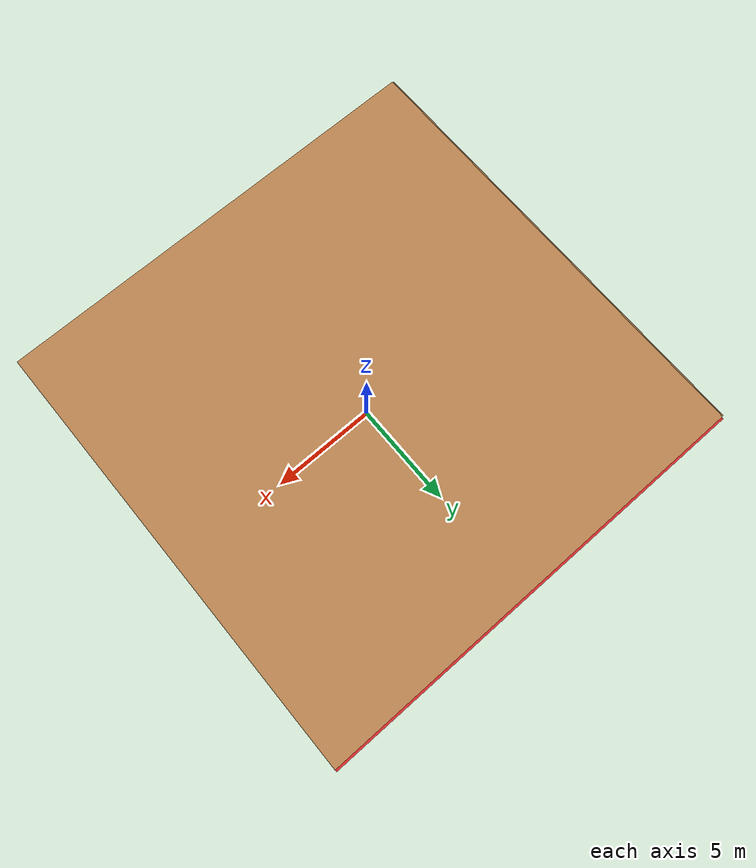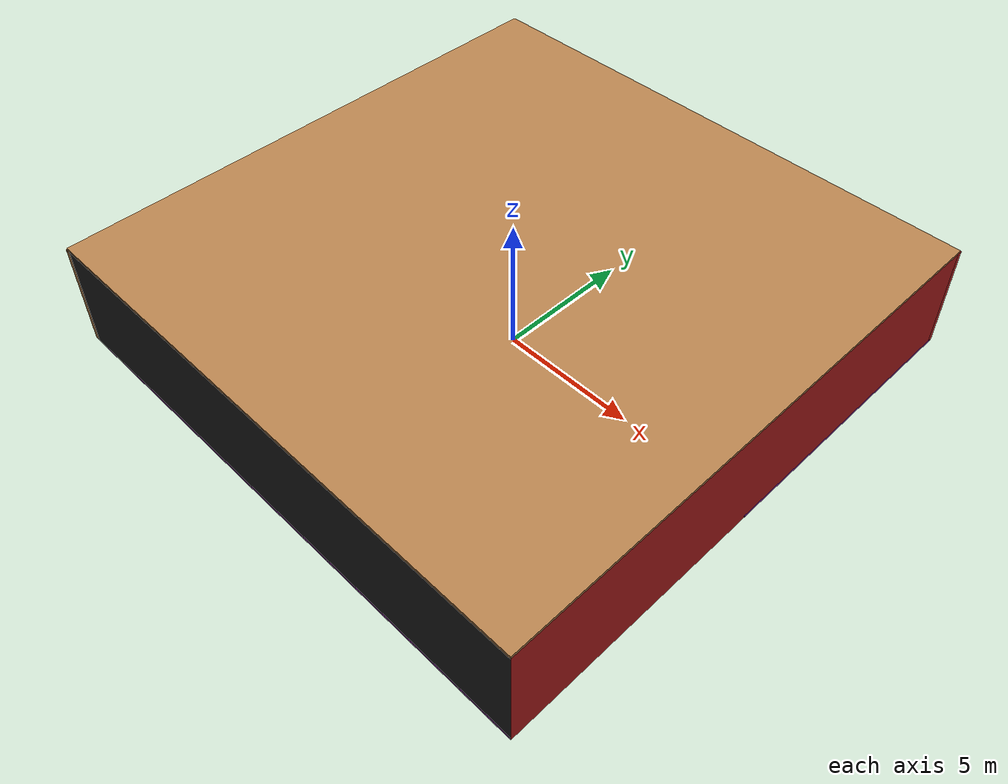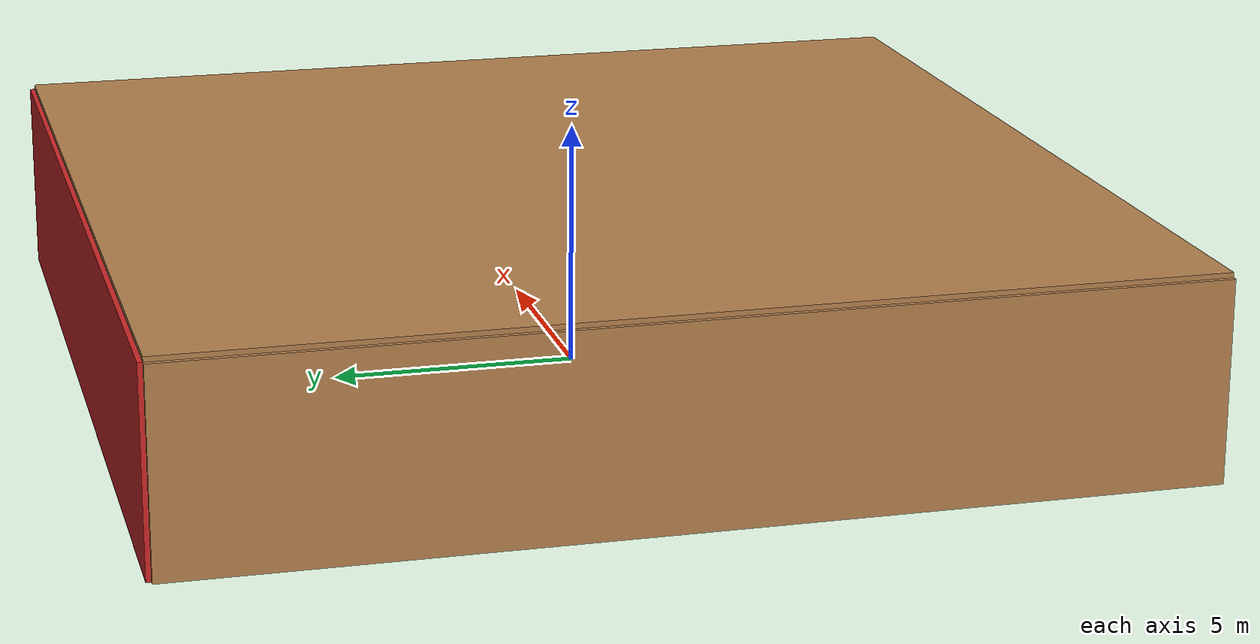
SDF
<sdf version="1.4">
 <world name="default">
  <physics type="ode">
   <max_step_size>0.001</max_step_size>
   <real_time_factor>1</real_time_factor>
   <real_time_update_rate>1000</real_time_update_rate>
   <gravity>0 0 -9.8</gravity>
  </physics>
  <scene><ambient>0.4 0.4 0.4 1</ambient><background>0.7 0.7 0.7 1</background><shadows>1</shadows></scene>
  <model name="Surrounding">
   <static>1</static>
   <link name="Ceiling">
    <collision name="Ceiling_Collision"><geometry><box><size>20 20 0.1</size></box></geometry></collision>
    <visual name="Ceiling_Visual">
     <geometry><box><size>20 20 0.1</size></box></geometry>
     <material>
      <script><uri>file://media/materials/scripts/gazebo.material</uri><name>Gazebo/Wood</name></script>
     </material>
    </visual>
    <pose>0 0 4.05 0 0 0</pose>
   </link>
   <link name="Wall_South">
    <collision name="Wall_South_Collision">
     <geometry><box><size>20 0 4</size></box></geometry>
     <pose>0 0 2 0 -0 0</pose>
    </collision>
    <visual name="Wall_South_Visual">
     <pose>0 0 2 0 -0 0</pose>
     <geometry><box><size>20 0 4</size></box></geometry>
     <material>
      <script><uri>file://media/materials/scripts/gazebo.material</uri><name>Gazebo/Black</name></script>
     </material>
    </visual>
    <velocity_decay><linear>0</linear><angular>0</angular></velocity_decay>
    <pose>0 -10 0 0 -0 0</pose>
   </link>
   <link name="Wall_East">
    <collision name="Wall_21_Collision">
     <geometry><box><size>20 0 4</size></box></geometry>
     <pose>0 0 2 0 -0 0</pose>
    </collision>
    <visual name="Wall_21_Visual">
     <pose>0 0 2 0 -0 0</pose>
     <geometry><box><size>20 0 4</size></box></geometry>
     <material>
      <script><uri>file://media/materials/scripts/gazebo.material</uri><name>Gazebo/Red</name></script>
     </material>
    </visual>
    <velocity_decay><linear>0</linear><angular>0</angular></velocity_decay>
    <pose>10 0 0 0 -0 1.5708</pose>
   </link>
   <link name="Wall_North">
    <collision name="Wall_22_Collision">
     <geometry><box><size>20 0.2 4</size></box></geometry>
     <pose>0 0 2 0 -0 0</pose>
    </collision>
    <visual name="Wall_22_Visual">
     <pose>0 0 2 0 -0 0</pose>
     <geometry><box><size>20 0.2 4</size></box></geometry>
     <material>
      <script><uri>file://media/materials/scripts/gazebo.material</uri><name>Gazebo/RedGlow</name></script>
     </material>
    </visual>
    <velocity_decay><linear>0</linear><angular>0</angular></velocity_decay>
    <pose>0 10 0 0 -0 0</pose>
   </link>
   <link name="Wall_West">
    <collision name="Wall_23_Collision">
     <geometry><box><size>20 0.2 4</size></box></geometry>
     <pose>0 0 2 0 -0 0</pose>
    </collision>
    <visual name="Wall_23_Visual">
     <pose>0 0 2 0 -0 0</pose>
     <geometry><box><size>20 0.2 4</size></box></geometry>
     <material>
      <script><uri>file://media/materials/scripts/gazebo.material</uri><name>Gazebo/Wood</name></script>
     </material>
    </visual>
    <velocity_decay><linear>0</linear><angular>0</angular></velocity_decay>
    <pose>-10 0 0 0 0 -1.5708</pose>
   </link>
   <link name="Ground_link">
    <collision name="collision">
     <pose>0 0 .05 0 -0 0</pose>
     <geometry><box><size>20 20 0.1</size></box></geometry>
    </collision>
    <visual name="visual">
     <pose>0 0 .05 0 -0 0</pose>
     <geometry><box><size>20 20 0.1</size></box></geometry>
     <material>
      <script><uri>file://media/materials/scripts/gazebo.material</uri><name>Gazebo/PurpleGlow</name></script>
     </material>
    </visual>
   </link>
   <static>1</static>
  </model>
  <spherical_coordinates>
   <surface_model>EARTH_WGS84</surface_model>
   <latitude_deg>0</latitude_deg>
   <longitude_deg>0</longitude_deg>
   <elevation>0</elevation>
   <heading_deg>0</heading_deg>
  </spherical_coordinates>
  <light name="lightball_0" type="diffuse">
   <diffuse>0.8 0.8 0.8 1</diffuse>
   <specular>0.2 0.2 0.2 1</specular>
   <attenuation>
    <range>100</range>
    <constant>0.7</constant>
    <linear>0.01</linear>
    <quadratic>0.001</quadratic>
   </attenuation>
   <direction>-0.5 0.1 -0.9</direction>
   <pose>-7.81639554819 5.87922895017 3.42025354969 0 0 0</pose>
  </light>
  <light name="lightball_1" type="diffuse">
   <diffuse>0.8 0.8 0.8 1</diffuse>
   <specular>0.2 0.2 0.2 1</specular>
   <attenuation>
    <range>100</range>
    <constant>0.7</constant>
    <linear>0.01</linear>
    <quadratic>0.001</quadratic>
   </attenuation>
   <direction>-0.5 0.1 -0.9</direction>
   <pose>-8.42549904101 -4.92155113399 0.665272383961 0 0 0</pose>
  </light>
  <light name="lightball_2" type="diffuse">
   <diffuse>0.8 0.8 0.8 1</diffuse>
   <specular>0.2 0.2 0.2 1</specular>
   <attenuation>
    <range>100</range>
    <constant>0.7</constant>
    <linear>0.01</linear>
    <quadratic>0.001</quadratic>
   </attenuation>
   <direction>-0.5 0.1 -0.9</direction>
   <pose>-5.08865942682 -8.32956869884 0.876954950127 0 0 0</pose>
  </light>
  <light name="lightball_3" type="diffuse">
   <diffuse>0.8 0.8 0.8 1</diffuse>
   <specular>0.2 0.2 0.2 1</specular>
   <attenuation>
    <range>100</range>
    <constant>0.7</constant>
    <linear>0.01</linear>
    <quadratic>0.001</quadratic>
   </attenuation>
   <direction>-0.5 0.1 -0.9</direction>
   <pose>-0.164617856419 -8.93241844309 2.97678225678 0 0 0</pose>
  </light>
  <light name="lightball_4" type="diffuse">
   <diffuse>0.8 0.8 0.8 1</diffuse>
   <specular>0.2 0.2 0.2 1</specular>
   <attenuation>
    <range>100</range>
    <constant>0.7</constant>
    <linear>0.01</linear>
    <quadratic>0.001</quadratic>
   </attenuation>
   <direction>-0.5 0.1 -0.9</direction>
   <pose>3.66655375632 -5.52661538364 1.55855715205 0 0 0</pose>
  </light>
  <light name="lightball_5" type="diffuse">
   <diffuse>0.8 0.8 0.8 1</diffuse>
   <specular>0.2 0.2 0.2 1</specular>
   <attenuation>
    <range>100</range>
    <constant>0.7</constant>
    <linear>0.01</linear>
    <quadratic>0.001</quadratic>
   </attenuation>
   <direction>-0.5 0.1 -0.9</direction>
   <pose>1.89078185293 -5.8564470063 3.80310082437 0 0 0</pose>
  </light>
  <light name="lightball_6" type="diffuse">
   <diffuse>0.8 0.8 0.8 1</diffuse>
   <specular>0.2 0.2 0.2 1</specular>
   <attenuation>
    <range>100</range>
    <constant>0.7</constant>
    <linear>0.01</linear>
    <quadratic>0.001</quadratic>
   </attenuation>
   <direction>-0.5 0.1 -0.9</direction>
   <pose>-3.24975740562 -9.70398528314 3.08428457179 0 0 0</pose>
  </light>
  <light name="lightball_7" type="diffuse">
   <diffuse>0.8 0.8 0.8 1</diffuse>
   <specular>0.2 0.2 0.2 1</specular>
   <attenuation>
    <range>100</range>
    <constant>0.7</constant>
    <linear>0.01</linear>
    <quadratic>0.001</quadratic>
   </attenuation>
   <direction>-0.5 0.1 -0.9</direction>
   <pose>2.77223954365 8.21496420502 3.67949837245 0 0 0</pose>
  </light>
  <light name="lightball_8" type="diffuse">
   <diffuse>0.8 0.8 0.8 1</diffuse>
   <specular>0.2 0.2 0.2 1</specular>
   <attenuation>
    <range>100</range>
    <constant>0.7</constant>
    <linear>0.01</linear>
    <quadratic>0.001</quadratic>
   </attenuation>
   <direction>-0.5 0.1 -0.9</direction>
   <pose>6.87757388172 7.02621504668 2.74770426862 0 0 0</pose>
  </light>
  <light name="lightball_9" type="diffuse">
   <diffuse>0.8 0.8 0.8 1</diffuse>
   <specular>0.2 0.2 0.2 1</specular>
   <attenuation>
    <range>100</range>
    <constant>0.7</constant>
    <linear>0.01</linear>
    <quadratic>0.001</quadratic>
   </attenuation>
   <direction>-0.5 0.1 -0.9</direction>
   <pose>-3.12107208162 -3.20765927553 1.12085126408 0 0 0</pose>
  </light>
  <light name="lightball_10" type="diffuse">
   <diffuse>0.8 0.8 0.8 1</diffuse>
   <specular>0.2 0.2 0.2 1</specular>
   <attenuation>
    <range>100</range>
    <constant>0.7</constant>
    <linear>0.01</linear>
    <quadratic>0.001</quadratic>
   </attenuation>
   <direction>-0.5 0.1 -0.9</direction>
   <pose>-3.08162504253 -3.49277174922 0.981470763742 0 0 0</pose>
  </light>
  <include>
   <uri>model://textured_shapes</uri>
   <pose>-7.61438405215 -6.84597871035 0 0 0 2.89203158182</pose>
  </include>
  <include><uri>model://cabinet</uri><pose>-8.10681697694 5.14200760662 0 0 0 1.53409163867</pose></include>
  <include>
   <uri>model://construction_cone</uri>
   <pose>-2.29280075317 -5.18970859539 0 0 0 2.05881677574</pose>
  </include>
  <include>
   <uri>model://construction_cone</uri>
   <pose>1.42708010293 -8.17956150964 0 0 0 0.484654813036</pose>
  </include>
  <include><uri>model://table</uri><pose>1.19532999125 -5.08725226963 0 0 0 2.58652293952</pose></include>
  <include><uri>model://table</uri><pose>0.761308231006 -2.11675342832 0 0 0 2.82022971472</pose></include>
 </world>
</sdf>

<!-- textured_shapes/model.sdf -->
<sdf version="1.6">
  <model name="textured_shapes">
    <pose>0 0 0.5 0 0 0</pose>
    <link name="box">
      <pose>0 -1.5 0 0 0 0</pose>
      <collision name="collision">
        <geometry>
          <box>
            <size>1 1 1</size>
          </box>
        </geometry>
      </collision>
      <visual name="visual">
        <geometry>
          <box>
            <size>1 1 1</size>
          </box>
        </geometry>
        <material>
          <script>
            <uri>model://../model_source/models/textured_shapes/materials/scripts</uri>
            <uri>model://../model_source/models/textured_shapes/materials/textures</uri>
            <name>TexturedShape/Squares</name>
          </script>
        </material>
      </visual>
    </link>
    <link name="sphere">
      <collision name="collision">
        <geometry>
          <sphere>
            <radius>0.5</radius>
          </sphere>
        </geometry>
      </collision>
      <visual name="visual">
        <geometry>
          <sphere>
            <radius>0.5</radius>
          </sphere>
        </geometry>
        <material>
          <script>
            <uri>model://../model_source/models/textured_shapes/materials/scripts</uri>
            <uri>model://../model_source/models/textured_shapes/materials/textures</uri>
            <name>TexturedShape/Squares</name>
          </script>
        </material>
      </visual>
    </link>
    <link name="cylinder">
      <pose>0 1.5 0 0 0 0</pose>
      <collision name="collision">
        <geometry>
          <cylinder>
            <radius>0.5</radius>
            <length>1</length>
          </cylinder>
        </geometry>
      </collision>
      <visual name="visual">
        <geometry>
          <cylinder>
            <radius>0.5</radius>
            <length>1</length>
          </cylinder>
        </geometry>
        <material>
          <script>
            <uri>model://../model_source/models/textured_shapes/materials/scripts</uri>
            <uri>model://../model_source/models/textured_shapes/materials/textures</uri>
            <name>TexturedShape/Squares</name>
          </script>
        </material>
      </visual>
    </link>
  </model>
</sdf>

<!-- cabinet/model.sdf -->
<sdf version="1.5">
  <model name="cabinet">
    <static>true</static>
    <link name="cabinet_bottom_plate">
      <inertial>
        <pose>0 0 -1 0 0 0</pose>
        <inertia>
          <ixx>2.050000</ixx>
          <ixy>0</ixy>
          <ixz>0</ixz>
          <iyy>2.050000</iyy>
          <iyz>0</iyz>
          <izz>2.050000</izz>
        </inertia>
        <mass>25.000000</mass>
      </inertial>
      <collision name="cabinet_bottom_plate_geom">
        <pose>0 0 0.010000 0 0 0</pose>
        <geometry>
          <box>
            <size>0.450000 0.450000 0.020000</size>
          </box>
        </geometry>
      </collision>
      <visual name="cabinet_bottom_plate_geom_visual">
        <pose>0 0 0.010000 0 0 0</pose>
        <geometry>
          <box>
            <size>0.450000 0.450000 0.020000</size>
          </box>
        </geometry>
        <material>
          <script>
            <uri>model://media/materials/scripts/gazebo.material</uri>
            <name>Gazebo/Wood</name>
          </script>
        </material>
      </visual>
      <collision name="cabinet_bottom_plate_geom_cabinet_back_plate">
        <pose>0.235000 0 0.510000 0 0 0</pose>
        <geometry>
          <box>
            <size>0.020000 0.450000 1.020000</size>
          </box>
        </geometry>
      </collision>
      <visual name="cabinet_bottom_plate_geom_cabinet_back_plate_visual">
        <pose>0.235000 0 0.510000 0 0 0</pose>
        <geometry>
          <box>
            <size>0.020000 0.450000 1.020000</size>
          </box>
        </geometry>
        <material>
          <script>
            <uri>model://media/materials/scripts/gazebo.material</uri>
            <name>Gazebo/Wood</name>
          </script>
        </material>
      </visual>
      <collision name="cabinet_bottom_plate_geom_cabinet_left_plate">
        <pose>0 0.235000 0.510000 0 0 0</pose>
        <geometry>
          <box>
            <size>0.450000 0.020000 1.020000</size>
          </box>
        </geometry>
      </collision>
      <visual name="cabinet_bottom_plate_geom_cabinet_left_plate_visual">
        <pose>0 0.235000 0.510000 0 0 0</pose>
        <geometry>
          <box>
            <size>0.450000 0.020000 1.020000</size>
          </box>
        </geometry>
        <material>
          <script>
            <uri>model://media/materials/scripts/gazebo.material</uri>
            <name>Gazebo/Wood</name>
          </script>
        </material>
      </visual>
      <collision name="cabinet_bottom_plate_geom_cabinet_middle_plate">
        <pose>0 0 0.510000 0 0 0</pose>
        <geometry>
          <box>
            <size>0.450000 0.450000 0.020000</size>
          </box>
        </geometry>
      </collision>
      <visual name="cabinet_bottom_plate_geom_cabinet_middle_plate_visual">
        <pose>0 0 0.510000 0 0 0</pose>
        <geometry>
          <box>
            <size>0.450000 0.450000 0.020000</size>
          </box>
        </geometry>
        <material>
          <script>
            <uri>model://media/materials/scripts/gazebo.material</uri>
            <name>Gazebo/Wood</name>
          </script>
        </material>
      </visual>
      <collision name="cabinet_bottom_plate_geom_cabinet_right_plate">
        <pose>0 -0.235000 0.510000 0 0 0</pose>
        <geometry>
          <box>
            <size>0.450000 0.020000 1.020000</size>
          </box>
        </geometry>
      </collision>
      <visual name="cabinet_bottom_plate_geom_cabinet_right_plate_visual">
        <pose>0 -0.235000 0.510000 0 0 0</pose>
        <geometry>
          <box>
            <size>0.450000 0.020000 1.020000</size>
          </box>
        </geometry>
        <material>
          <script>
            <uri>model://media/materials/scripts/gazebo.material</uri>
            <name>Gazebo/Wood</name>
          </script>
        </material>
      </visual>
      <collision name="cabinet_bottom_plate_geom_cabinet_top_plate">
        <pose>0 0 1.010000 0 0 0</pose>
        <geometry>
          <box>
            <size>0.450000 0.450000 0.020000</size>
          </box>
        </geometry>
      </collision>
      <visual name="cabinet_bottom_plate_geom_cabinet_top_plate_visual">
        <pose>0 0 1.010000 0 0 0</pose>
        <geometry>
          <box>
            <size>0.450000 0.450000 0.020000</size>
          </box>
        </geometry>
        <material>
          <script>
            <uri>model://media/materials/scripts/gazebo.material</uri>
            <name>Gazebo/Wood</name>
          </script>
        </material>
      </visual>
    </link>
  </model>
</sdf>

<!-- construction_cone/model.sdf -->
<sdf version="1.5">
  <model name="Construction Cone">
    <link name="link">
      <collision name="collision">
        <geometry>
          <mesh>
            <scale>10 10 10</scale>
            <uri>file://isr-testbed/construction_cone/meshes/construction_cone.dae</uri>
          </mesh>
        </geometry>
      </collision>
      <visual name="visual">
        <geometry>
          <mesh>
            <scale>10 10 10</scale>
            <uri>file://isr-testbed/construction_cone/meshes/construction_cone.dae</uri>
          </mesh>
        </geometry>
      </visual>
    </link>
  </model>
</sdf>

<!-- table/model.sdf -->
<sdf version="1.5">
  <model name="table">
    <static>true</static>
    <link name="link">
      <collision name="surface">
        <pose>0 0 1.0 0 0 0</pose>
        <geometry>
          <box>
            <size>1.5 0.8 0.03</size>
          </box>
        </geometry>
        <surface>
          <friction>
            <ode>
              <mu>0.6</mu>
              <mu2>0.6</mu2>
            </ode>
          </friction>
        </surface>
      </collision>
      <visual name="visual1">
        <pose>0 0 1.0 0 0 0</pose>
        <geometry>
          <box>
            <size>1.5 0.8 0.03</size>
          </box>
        </geometry>
        <material>
          <script>
            <uri>model://media/materials/scripts/gazebo.material</uri>
            <name>Gazebo/Wood</name>
          </script>
        </material>
      </visual>
      <collision name="front_left_leg">
        <pose>0.68 0.38 0.5 0 0 0</pose>
        <geometry>
          <cylinder>
            <radius>0.02</radius>
            <length>1.0</length>
          </cylinder>
        </geometry>
      </collision>
      <visual name="front_left_leg">
        <pose>0.68 0.38 0.5 0 0 0</pose>
        <geometry>
          <cylinder>
            <radius>0.02</radius>
            <length>1.0</length>
          </cylinder>
        </geometry>
        <material>
          <script>
            <uri>model://media/materials/scripts/gazebo.material</uri>
            <name>Gazebo/Grey</name>
          </script>
        </material>
      </visual>
      <collision name="front_right_leg">
        <pose>0.68 -0.38 0.5 0 0 0</pose>
        <geometry>
          <cylinder>
            <radius>0.02</radius>
            <length>1.0</length>
          </cylinder>
        </geometry>
      </collision>
      <visual name="front_right_leg">
        <pose>0.68 -0.38 0.5 0 0 0</pose>
        <geometry>
          <cylinder>
            <radius>0.02</radius>
            <length>1.0</length>
          </cylinder>
        </geometry>
        <material>
          <script>
            <uri>model://media/materials/scripts/gazebo.material</uri>
            <name>Gazebo/Grey</name>
          </script>
        </material>
      </visual>
      <collision name="back_right_leg">
        <pose>-0.68 -0.38 0.5 0 0 0</pose>
        <geometry>
          <cylinder>
            <radius>0.02</radius>
            <length>1.0</length>
          </cylinder>
        </geometry>
      </collision>
      <visual name="back_right_leg">
        <pose>-0.68 -0.38 0.5 0 0 0</pose>
        <geometry>
          <cylinder>
            <radius>0.02</radius>
            <length>1.0</length>
          </cylinder>
        </geometry>
        <material>
          <script>
            <uri>model://media/materials/scripts/gazebo.material</uri>
            <name>Gazebo/Grey</name>
          </script>
        </material>
      </visual>
      <collision name="back_left_leg">
        <pose>-0.68 0.38 0.5 0 0 0</pose>
        <geometry>
          <cylinder>
            <radius>0.02</radius>
            <length>1.0</length>
          </cylinder>
        </geometry>
      </collision>
      <visual name="back_left_leg">
        <pose>-0.68 0.38 0.5 0 0 0</pose>
        <geometry>
          <cylinder>
            <radius>0.02</radius>
            <length>1.0</length>
          </cylinder>
        </geometry>
        <material>
          <script>
            <uri>model://media/materials/scripts/gazebo.material</uri>
            <name>Gazebo/Grey</name>
          </script>
        </material>
      </visual>
    </link>
  </model>
</sdf>
